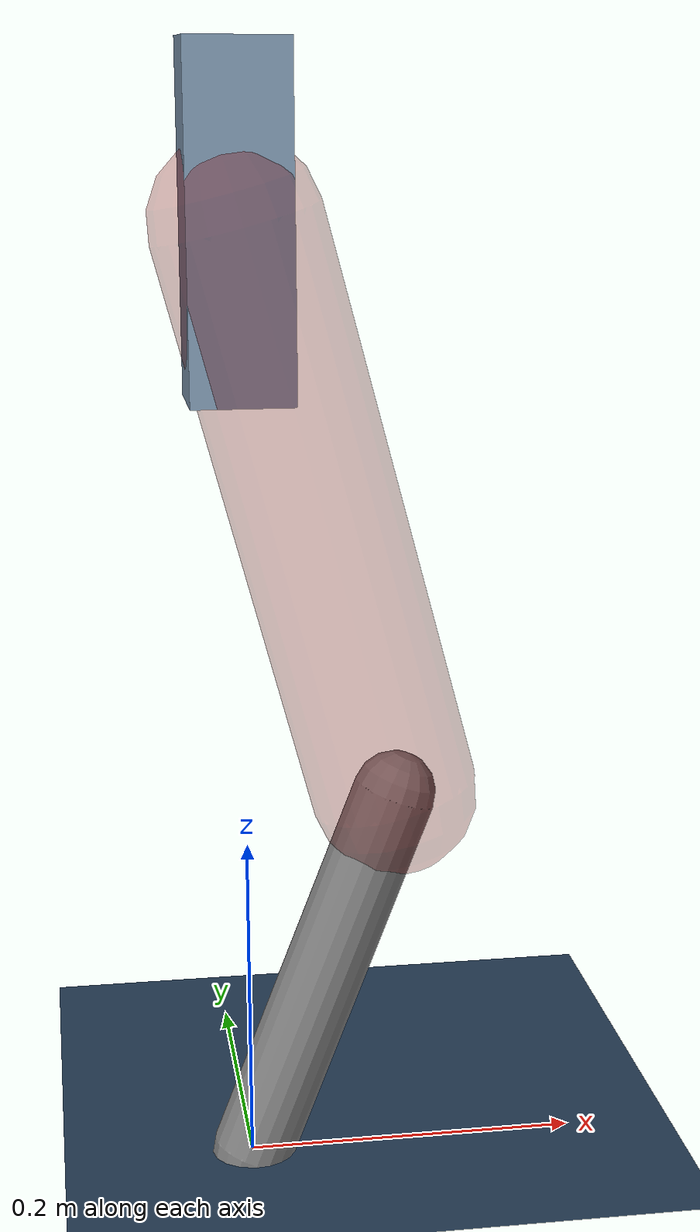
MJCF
<mujoco model="Hopper2D">
	<compiler inertiafromgeom="true" angle="radian" />
	<option timestep="0.001" integrator="implicit" cone="elliptic" solver="Newton" tolerance="1e-10" />

	<default>
		<geom contype="1" conaffinity="1" condim="3" friction="2 0.005 0.0001" solref="0.005 1" />
		<joint limited="true" damping="0.1" />
	</default>

	<asset>
		<texture name="skybox" type="skybox" builtin="gradient" rgb1=".4 .6 .8" rgb2="0 0 0" width="800" height="800" />
		<texture name="grid" type="2d" builtin="checker" rgb1=".1 .2 .3" rgb2=".2 .3 .4" width="300" height="300" mark="edge" markrgb=".2 .3 .4" />
		<material name="ground" texture="grid" texrepeat="1 1" texuniform="true" reflectance="0.1" />
		<material name="leg" rgba="0.5 0.6 0.7 1" />
	</asset>

	<worldbody>

		<geom name="floor" type="plane" size="5 5 0.25" material="ground" />

		<light directional="false" diffuse="0.8 0.8 0.8" specular="0.3 0.3 0.3" pos="0 0 2" dir="0 0 -1" />
		<light mode="targetbodycom" target="base" directional="false" diffuse="0.8 0.8 0.8" specular="0.3 0.3 0.3" pos="0 0 2" dir="0 0 -1" />

		<camera name="fixed" pos="0 -2 1" xyaxes="1 0 0 0 0 1" />
		<camera name="tracking" mode="trackcom" pos="0 -3 1" />

		<body name="root" pos="0 0 0.5673263792255325">
			<joint name="slide_x" type="slide" axis="1 0 0" range="-100 100" />
			<joint name="slide_z" type="slide" axis="0 0 1" range="0 10" />

			<body name="base" pos="0 0 0">
				<geom name="torso" type="box" size="0.03 0.03 0.1" mass="2.226" material="leg" />

				<body name="link1" pos="0 0 0" euler="0 1.3125626198042757 0">
					<joint type="hinge" axis="0 -1 0" pos="0 0 0" name="hinge1" limited="true" range="-3.14 3.14" stiffness="0" damping="0.1" />
					<geom name="thigh" type="capsule" fromto="0 0 0 0.3497243894886581 0 0" size="0.05" rgba="0.5 0 0 0.3" mass="1.1259282905682426" />

					<body name="link2" pos="0.3497243894886581 0 0" euler="0 0.6297983011876761 0">
						<joint type="hinge" axis="0 -1 0" pos="0 0 0" name="hinge2" limited="true" range="-3.14 3.14" stiffness="0" damping="0.1" />
						<geom name="shank" type="capsule" fromto="0 0 0 0.2459837882821736 0 0" size="0.025" mass="0.4391870306257389" />

					</body>
				</body>
			</body>
		</body>
	</worldbody>

	<actuator>
		<motor name="torque1" joint="hinge1" ctrlrange="-19.636837939402923 19.636837939402923" ctrllimited="true" gear="1" />
		<motor name="torque2" joint="hinge2" ctrlrange="-172.55996249869222 172.55996249869222" ctrllimited="true" gear="1" />
	</actuator>
</mujoco>
